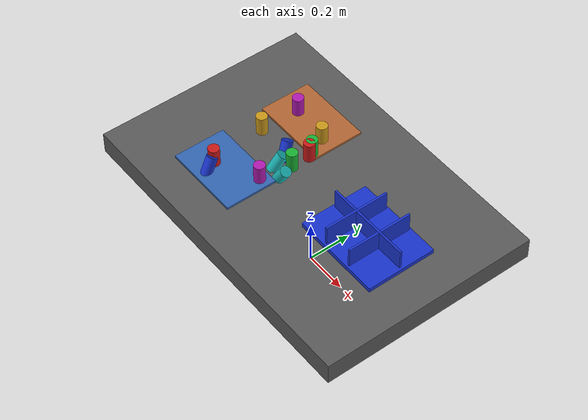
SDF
<?xml version="1.0" ?>
<sdf version="1.9">
  <!-- Standalone M1B scene.  The controller-backed Panda is spawned by the
       existing launch path; this file never alters the frozen M1A cube world. -->
  <world name="industrial_cylinder_v1">
    <physics name="bullet" type="bullet"><max_step_size>0.001</max_step_size><real_time_factor>1.0</real_time_factor></physics>
    <plugin name="gz::sim::systems::Physics" filename="gz-sim-physics-system"><engine><filename>gz-physics-bullet-featherstone-plugin</filename></engine></plugin>
    <plugin name="gz::sim::systems::UserCommands" filename="gz-sim-user-commands-system"/>
    <plugin name="gz::sim::systems::SceneBroadcaster" filename="gz-sim-scene-broadcaster-system"/>
    <plugin name="gz::sim::systems::Sensors" filename="gz-sim-sensors-system"><render_engine>ogre2</render_engine></plugin>
    <gravity>0 0 -9.81</gravity>
    <light type="directional" name="industrial_light"><pose>0 0 5 0 0 0</pose><direction>-0.3 0.2 -0.9</direction><diffuse>0.9 0.9 0.9 1</diffuse></light>
    <model name="industrial_work_table"><static>true</static><link name="link"><pose>0 0 0.4 0 0 0</pose><collision name="collision"><geometry><box><size>1.5 1.0 0.1</size></box></geometry></collision><visual name="visual"><geometry><box><size>1.5 1.0 0.1</size></box></geometry><material><diffuse>0.35 0.35 0.35 1</diffuse></material></visual></link></model>
    <model name="camera_fixture"><static>true</static><link name="camera_rgbd"><pose>-0.80 -0.80 1.40 0 0.77 0.93</pose><sensor name="front_rgbd" type="rgbd_camera"><always_on>1</always_on><update_rate>15</update_rate><topic>/xh/camera/rgbd</topic><camera><horizontal_fov>1.047</horizontal_fov><image><width>640</width><height>480</height><format>R8G8B8</format></image><clip><near>0.1</near><far>4.0</far></clip></camera></sensor></link></model>
    <model name="incoming_zone_a"><static>true</static><link name="link"><pose>-0.28 -0.22 0.455 0 0 0</pose><visual name="visual"><geometry><box><size>0.36 0.24 0.01</size></box></geometry><material><diffuse>0.2 0.4 0.7 1</diffuse></material></visual></link></model>
    <model name="incoming_zone_b"><static>true</static><link name="link"><pose>-0.28 0.22 0.455 0 0 0</pose><visual name="visual"><geometry><box><size>0.36 0.24 0.01</size></box></geometry><material><diffuse>0.7 0.4 0.2 1</diffuse></material></visual></link></model>
    <!-- M1B_RANDOM_PARTS_BEGIN -->
    <model name="cylinder_01"><pose>-0.3313 -0.2366 0.5000 0.0000 0.0000 -1.4329</pose><link name="link"><inertial><mass>0.06</mass></inertial><collision name="collision"><geometry><cylinder><radius>0.025</radius><length>0.09</length></cylinder></geometry></collision><visual name="visual"><geometry><cylinder><radius>0.025</radius><length>0.09</length></cylinder></geometry><material><diffuse>0.800 0.100 0.100 1</diffuse><specular>0.15 0.15 0.15 1</specular></material></visual></link></model>
    <model name="cylinder_02"><pose>-0.1202 -0.0017 0.5000 3.1416 0.0000 -1.3285</pose><link name="link"><inertial><mass>0.06</mass></inertial><collision name="collision"><geometry><cylinder><radius>0.025</radius><length>0.09</length></cylinder></geometry></collision><visual name="visual"><geometry><cylinder><radius>0.025</radius><length>0.09</length></cylinder></geometry><material><diffuse>0.100 0.700 0.200 1</diffuse><specular>0.15 0.15 0.15 1</specular></material></visual></link></model>
    <model name="cylinder_03"><pose>-0.3139 -0.2759 0.4800 0.4500 -0.3000 -2.4112</pose><link name="link"><inertial><mass>0.06</mass></inertial><collision name="collision"><geometry><cylinder><radius>0.025</radius><length>0.09</length></cylinder></geometry></collision><visual name="visual"><geometry><cylinder><radius>0.025</radius><length>0.09</length></cylinder></geometry><material><diffuse>0.100 0.200 0.800 1</diffuse><specular>0.15 0.15 0.15 1</specular></material></visual></link></model>
    <model name="cylinder_04"><pose>-0.1655 0.1864 0.5000 0.0000 0.0000 -0.4061</pose><link name="link"><inertial><mass>0.06</mass></inertial><collision name="collision"><geometry><cylinder><radius>0.025</radius><length>0.09</length></cylinder></geometry></collision><visual name="visual"><geometry><cylinder><radius>0.025</radius><length>0.09</length></cylinder></geometry><material><diffuse>0.800 0.600 0.100 1</diffuse><specular>0.15 0.15 0.15 1</specular></material></visual></link></model>
    <model name="cylinder_05"><pose>-0.3528 0.2073 0.5000 3.1416 0.0000 -0.5029</pose><link name="link"><inertial><mass>0.06</mass></inertial><collision name="collision"><geometry><cylinder><radius>0.025</radius><length>0.09</length></cylinder></geometry></collision><visual name="visual"><geometry><cylinder><radius>0.025</radius><length>0.09</length></cylinder></geometry><material><diffuse>0.700 0.100 0.700 1</diffuse><specular>0.15 0.15 0.15 1</specular></material></visual></link></model>
    <model name="cylinder_06"><pose>-0.0940 -0.0742 0.4800 0.4500 -0.3000 2.3062</pose><link name="link"><inertial><mass>0.06</mass></inertial><collision name="collision"><geometry><cylinder><radius>0.025</radius><length>0.09</length></cylinder></geometry></collision><visual name="visual"><geometry><cylinder><radius>0.025</radius><length>0.09</length></cylinder></geometry><material><diffuse>0.100 0.700 0.700 1</diffuse><specular>0.15 0.15 0.15 1</specular></material></visual></link></model>
    <model name="cylinder_07"><pose>-0.1202 0.0860 0.5000 0.0000 0.0000 0.9520</pose><link name="link"><inertial><mass>0.06</mass></inertial><collision name="collision"><geometry><cylinder><radius>0.025</radius><length>0.09</length></cylinder></geometry></collision><visual name="visual"><geometry><cylinder><radius>0.025</radius><length>0.09</length></cylinder></geometry><material><diffuse>0.800 0.100 0.100 1</diffuse><specular>0.15 0.15 0.15 1</specular></material></visual></link></model>
    <model name="cylinder_08"><pose>-0.1280 0.1065 0.5000 3.1416 0.0000 -2.1326</pose><link name="link"><inertial><mass>0.06</mass></inertial><collision name="collision"><geometry><cylinder><radius>0.025</radius><length>0.09</length></cylinder></geometry></collision><visual name="visual"><geometry><cylinder><radius>0.025</radius><length>0.09</length></cylinder></geometry><material><diffuse>0.100 0.700 0.200 1</diffuse><specular>0.15 0.15 0.15 1</specular></material></visual></link></model>
    <model name="cylinder_09"><pose>-0.1946 0.0204 0.4800 0.4500 -0.3000 -2.0866</pose><link name="link"><inertial><mass>0.06</mass></inertial><collision name="collision"><geometry><cylinder><radius>0.025</radius><length>0.09</length></cylinder></geometry></collision><visual name="visual"><geometry><cylinder><radius>0.025</radius><length>0.09</length></cylinder></geometry><material><diffuse>0.100 0.200 0.800 1</diffuse><specular>0.15 0.15 0.15 1</specular></material></visual></link></model>
    <model name="cylinder_10"><pose>-0.3595 0.0254 0.5000 0.0000 0.0000 2.3511</pose><link name="link"><inertial><mass>0.06</mass></inertial><collision name="collision"><geometry><cylinder><radius>0.025</radius><length>0.09</length></cylinder></geometry></collision><visual name="visual"><geometry><cylinder><radius>0.025</radius><length>0.09</length></cylinder></geometry><material><diffuse>0.800 0.600 0.100 1</diffuse><specular>0.15 0.15 0.15 1</specular></material></visual></link></model>
    <model name="cylinder_11"><pose>-0.1454 -0.1462 0.5000 3.1416 0.0000 -1.1343</pose><link name="link"><inertial><mass>0.06</mass></inertial><collision name="collision"><geometry><cylinder><radius>0.025</radius><length>0.09</length></cylinder></geometry></collision><visual name="visual"><geometry><cylinder><radius>0.025</radius><length>0.09</length></cylinder></geometry><material><diffuse>0.700 0.100 0.700 1</diffuse><specular>0.15 0.15 0.15 1</specular></material></visual></link></model>
    <model name="cylinder_12"><pose>-0.1618 -0.0453 0.4800 0.4500 -0.3000 -3.0029</pose><link name="link"><inertial><mass>0.06</mass></inertial><collision name="collision"><geometry><cylinder><radius>0.025</radius><length>0.09</length></cylinder></geometry></collision><visual name="visual"><geometry><cylinder><radius>0.025</radius><length>0.09</length></cylinder></geometry><material><diffuse>0.100 0.700 0.700 1</diffuse><specular>0.15 0.15 0.15 1</specular></material></visual></link></model>
    <!-- M1B_RANDOM_PARTS_END -->
    <model name="blue_partition_bin"><static>true</static><pose>0.36 0 0.45 0 0 0</pose><link name="link"><collision name="floor"><pose>0 0 0.01 0 0 0</pose><geometry><box><size>0.42 0.32 0.02</size></box></geometry></collision><visual name="floor_visual"><pose>0 0 0.01 0 0 0</pose><geometry><box><size>0.42 0.32 0.02</size></box></geometry><material><diffuse>0.1 0.2 0.8 1</diffuse></material></visual><visual name="row_divider"><pose>0 0 0.06 0 0 0</pose><geometry><box><size>0.40 0.01 0.10</size></box></geometry><material><diffuse>0.1 0.2 0.8 1</diffuse></material></visual><visual name="col_divider_a"><pose>-0.07 0 0.06 0 0 0</pose><geometry><box><size>0.01 0.30 0.10</size></box></geometry><material><diffuse>0.1 0.2 0.8 1</diffuse></material></visual><visual name="col_divider_b"><pose>0.07 0 0.06 0 0 0</pose><geometry><box><size>0.01 0.30 0.10</size></box></geometry><material><diffuse>0.1 0.2 0.8 1</diffuse></material></visual></link></model>
    <!-- Reserved only: second table, bin transport corridor, stackable-bin
         collision volume, and second arm mounting namespace. -->
  </world>
</sdf>
